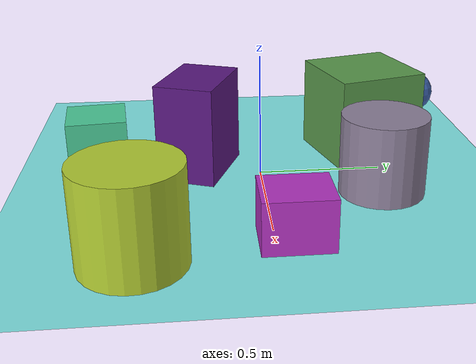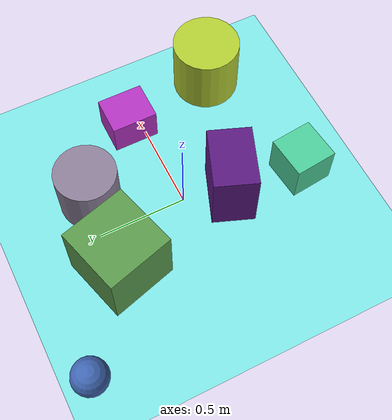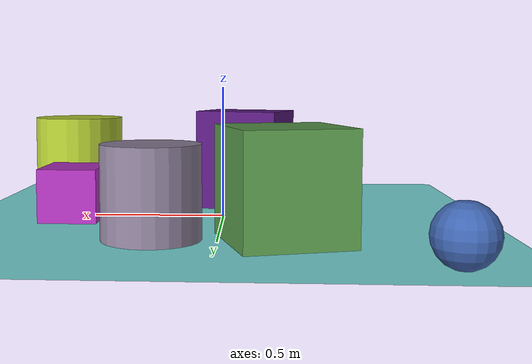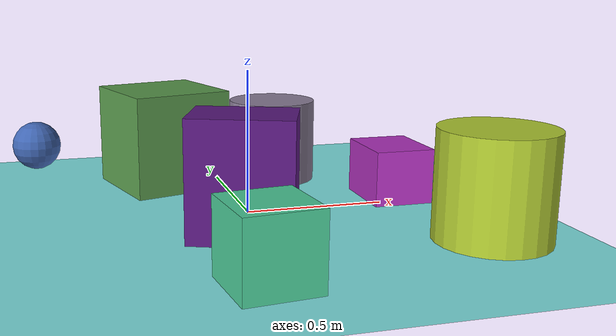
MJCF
<mujoco>
   <asset>
<texture type="skybox" builtin="gradient" rgb1="0.4 0.3 0.8" rgb2="0.5 0.5 0.3" width="256" height="256"/>
<texture name="gradient_0" builtin="gradient" rgb1="1.0 0.1 0.7" rgb2="0.4 0.3 0.8" width="200" height="200"/>
<texture name="gradient_1" builtin="gradient" rgb1="0.1 0.8 0.7" rgb2="0.4 0.0 0.7" width="200" height="200"/>
<texture name="gradient_2" builtin="gradient" rgb1="0.1 0.1 0.9" rgb2="0.6 0.1 0.1" width="200" height="200"/>
<texture name="gradient_3" builtin="gradient" rgb1="0.5 0.8 0.2" rgb2="0.2 0.4 0.4" width="200" height="200"/>
<texture name="checker_4" builtin="checker" rgb1="0.4 1.0 0.7" rgb2="0.7 0.0 0.5" width="200" height="200"/>
<texture name="flat_5" builtin="flat" rgb1="0.7 0.8 0.2" rgb2="0.7 0.8 0.2"  width="200" height="200"/>
<texture name="gradient_6" builtin="gradient" rgb1="0.5 0.7 0.9" rgb2="0.1 0.9 0.3" width="200" height="200"/><material name="gradient_0_mat" reflectance="0" texture="gradient_0" texuniform="true"/>
<material name="gradient_1_mat" reflectance="0" texture="gradient_1" texuniform="true"/>
<material name="gradient_2_mat" reflectance="0" texture="gradient_2" texuniform="true"/>
<material name="gradient_3_mat" reflectance="0" texture="gradient_3" texuniform="true"/>
<material name="checker_4_mat" reflectance="0" texrepeat="3 3" texture="checker_4" texuniform="false" />
<material name="flat_5_mat" reflectance="0" texture="flat_5" texuniform="true"/>
<material name="gradient_6_mat" reflectance="0" texture="gradient_6" texuniform="true"/>
   </asset>

   <worldbody>
      <light diffuse=".9 .9 .9" pos="0 0 3" dir="0 0 -1"/>
     <geom type="plane" size="1 1 0.1" rgba="0.5 0.9 0.9 1"/>
<geom type="box" pos="0.57 0.07 0.1" size="0.11 0.13 0.1" material="gradient_0_mat" euler="0 0 0" />
<geom type="sphere" pos="-0.71 0.85 0.1" size="0.1 0.1 0.1" material="gradient_1_mat" euler="0 0 75" />
<geom type="box" pos="-0.08 -0.25 0.2" size="0.12 0.17 0.2" material="gradient_2_mat" euler="0 0 69" />
<geom type="box" pos="-0.22 0.47 0.19" size="0.19 0.19 0.19" material="gradient_3_mat" euler="0 0 16" />
<geom type="cylinder" pos="0.22 0.46 0.16" size="0.17 0.16 0.16" material="checker_4_mat" euler="0 0 72" />
<geom type="cylinder" pos="0.67 -0.48 0.18" size="0.19 0.18 0.18" material="flat_5_mat" euler="0 0 26" />
<geom type="box" pos="-0.12 -0.67 0.12" size="0.12 0.12 0.12" material="gradient_6_mat" euler="0 0 6" /><camera euler="60 0 180" fovy="60" name="camera1" pos="-0.2 -1.5 1"></camera>   </worldbody>
</mujoco>
